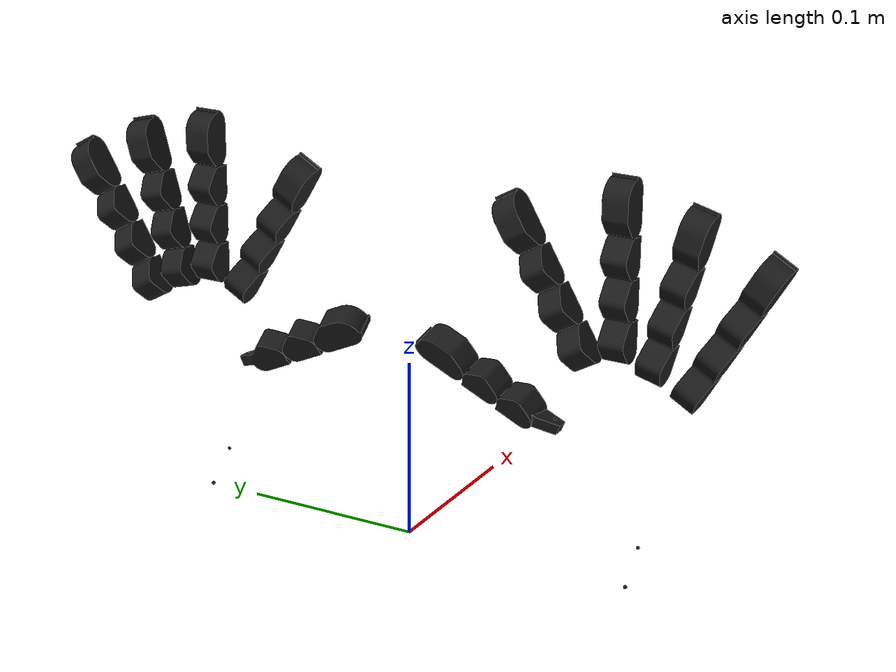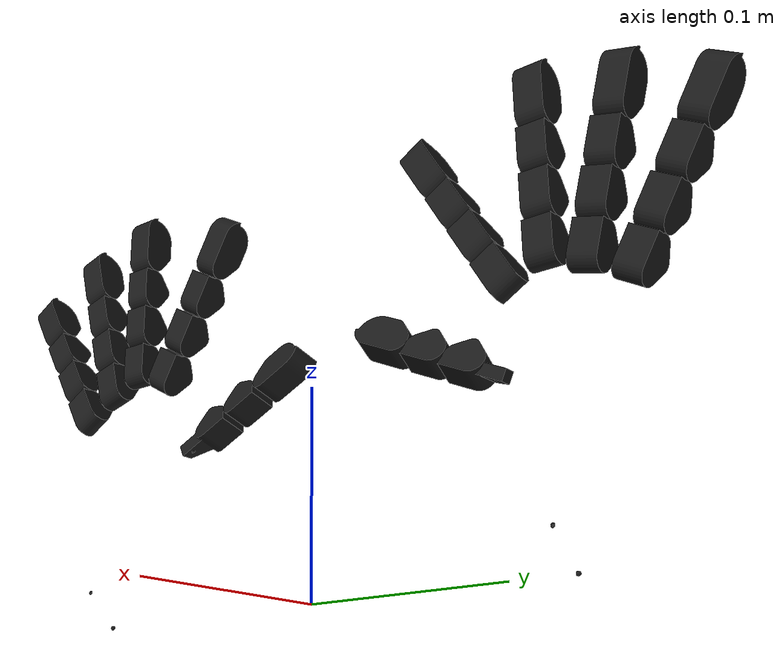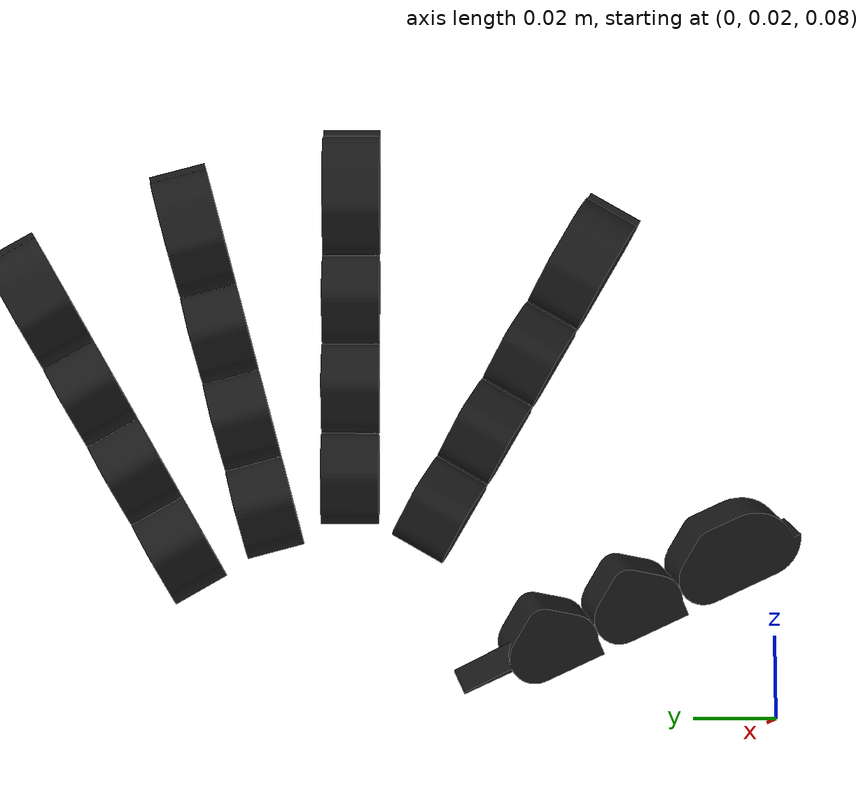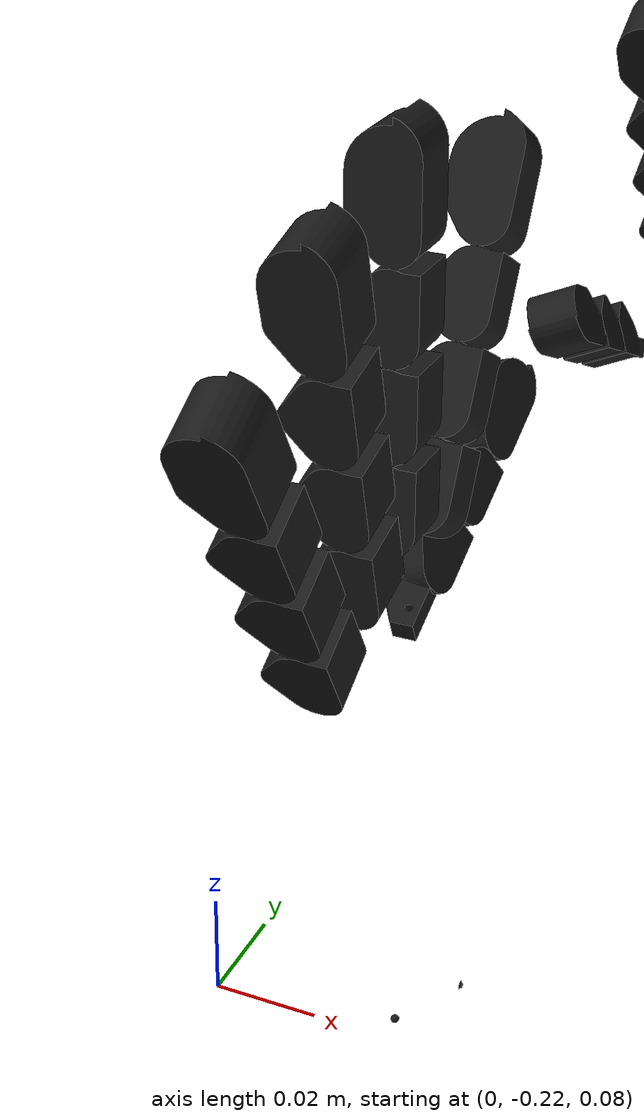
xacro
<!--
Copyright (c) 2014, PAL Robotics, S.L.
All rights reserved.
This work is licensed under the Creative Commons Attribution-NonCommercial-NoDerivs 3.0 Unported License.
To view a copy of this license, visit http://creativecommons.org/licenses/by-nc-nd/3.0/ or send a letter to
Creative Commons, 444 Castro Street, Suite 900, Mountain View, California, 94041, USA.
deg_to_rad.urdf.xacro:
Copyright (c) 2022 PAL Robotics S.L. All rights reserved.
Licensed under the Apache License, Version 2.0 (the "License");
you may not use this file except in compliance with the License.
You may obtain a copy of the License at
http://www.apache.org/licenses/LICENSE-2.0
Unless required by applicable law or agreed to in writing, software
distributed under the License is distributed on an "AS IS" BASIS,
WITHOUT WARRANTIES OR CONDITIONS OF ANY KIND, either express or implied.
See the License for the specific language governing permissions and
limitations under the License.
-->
<?xml version="1.0"?>
<robot xmlns:xacro="http://ros.org/wiki/xacro"
       name="hey5">
  <!--External resources-->
  <xacro:include filename="$(find hey5_description)/urdf/deg_to_rad.urdf.xacro" />
  <xacro:include filename="$(find hey5_description)/urdf/hey5_hand.urdf.xacro" />

  <!--Spawn hands-->
  <link name="tool_flange"/>

  <xacro:hey5_hand parent="tool_flange" name="hand_right" reflect="1" >
    <origin xyz="0 0.13 0" rpy="0 ${-90 * deg_to_rad} ${90 * deg_to_rad}" />
  </xacro:hey5_hand>

  <xacro:hey5_hand parent="tool_flange" name="hand_left" reflect="-1" >
    <origin xyz="0 -0.13 0" rpy="0 ${-90 * deg_to_rad} ${90 * deg_to_rad}" />
  </xacro:hey5_hand>

</robot>

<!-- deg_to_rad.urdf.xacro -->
<robot xmlns:xacro="http://ros.org/wiki/xacro">
  <xacro:property name="deg_to_rad" value="0.01745329251994329577" />
</robot>

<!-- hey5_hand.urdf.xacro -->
<robot xmlns:xacro="http://ros.org/wiki/xacro">
  <!--External resources-->
  <xacro:include filename="$(find hey5_description)/urdf/actuators.urdf.xacro" />
  <xacro:include filename="$(find hey5_description)/urdf/deg_to_rad.urdf.xacro" />
  <xacro:include filename="$(find hey5_description)/urdf/fingers.urdf.xacro" />
  <xacro:include filename="$(find hey5_description)/urdf/palm.urdf.xacro" />
  <xacro:include filename="$(find hey5_description)/urdf/transmissions.urdf.xacro" />
  <xacro:include filename="$(find hey5_description)/gazebo/gazebo.urdf.xacro" />

  <!--Constants-->
  <xacro:property name="thumb_act_flex_start"  value="2.0" />
  <xacro:property name="index_act_flex_start"  value="0.7" />
  <xacro:property name="middle_act_flex_start" value="0.0" />
  <xacro:property name="ring_act_flex_start"   value="0.75" />
  <xacro:property name="little_act_flex_start" value="0.75" />

  <xacro:macro name="hey5_hand" params="name parent reflect *origin">
  <!-- Tool Link -->
    <link name="${name}_tool_link">
      <inertial>
        <origin xyz="0 0 0" rpy="0 0 0" />
        <mass value="0.0001" />
        <inertia ixx="0.00001" ixy="0.0" ixz="0.0"
                 iyy="0.00001" iyz="0.0"
                 izz="0.00001" />
      </inertial>
    </link>

    <joint name="${name}_tool_joint" type="fixed">
      <xacro:insert_block name="origin"/>
      <parent link="${parent}" />
      <child link="${name}_tool_link" />
       <axis xyz="0 0 0" />
    </joint>
    <!--Palm-->
    <xacro:palm parent="${parent}" name="${name}_palm" reflect="${reflect}" >
      <xacro:insert_block name="origin" />
    </xacro:palm>

    <!--Actuators-->
    <xacro:thumb_actuator parent="${name}_palm_link" name="${name}_thumb">
      <origin xyz="0 0 0" rpy="0 0 0" /> <!-- TODO: Change! -->
    </xacro:thumb_actuator>

    <xacro:index_actuator parent="${name}_palm_link" name="${name}_index">
      <origin xyz="0 0 0" rpy="0 0 0" /> <!-- TODO: Change! -->
    </xacro:index_actuator>

    <xacro:mrl_actuator parent="${name}_palm_link" name="${name}_mrl">
      <origin xyz="0 0 0" rpy="0 0 0" /> <!-- TODO: Change! -->
    </xacro:mrl_actuator>

    <!--Fingers-->
    <!-- TODO: Add grasp hack? -->
    <xacro:thumb parent="${name}_palm_link" name="${name}_thumb" reflect="${reflect}">
      <origin xyz="0.0901 0.0134 ${reflect * 0.038}" rpy="0 ${-reflect * 65 * deg_to_rad} 0" />
    </xacro:thumb>

    <xacro:finger parent="${name}_palm_link" name="${name}_index" reflect="${reflect}">
      <origin xyz="0.1265 0.0042 ${reflect * 0.0265}" rpy="${-reflect * 90 * deg_to_rad} ${-reflect * 30 * deg_to_rad} 0" />
    </xacro:finger>

    <xacro:finger parent="${name}_palm_link" name="${name}_middle" reflect="${reflect}">
      <origin xyz="0.1335 0.0042 ${reflect * 0.007}" rpy="${-reflect * 90 * deg_to_rad} 0 0" />
    </xacro:finger>

    <xacro:finger parent="${name}_palm_link" name="${name}_ring" reflect="${reflect}">
      <origin xyz="0.1265 0.0042 ${reflect * -0.0125}" rpy="${-reflect * 90 * deg_to_rad} ${reflect * 15 * deg_to_rad} 0" />
    </xacro:finger>

    <xacro:finger parent="${name}_palm_link" name="${name}_little" reflect="${reflect}">
      <origin xyz="0.1165 0.0042 ${reflect * -0.032}" rpy="${-reflect * 90 * deg_to_rad} ${reflect * 30 * deg_to_rad} 0" />
    </xacro:finger>

    <!--Transmissions-->
    <xacro:thumb_transmissions
      finger_name="${name}_thumb"
      act_name="${name}_thumb_motor"
      act_flex_start="${thumb_act_flex_start}"
      jnt_abd_start="${0.0 * deg_to_rad}"
      jnt_abd_stop="${90 * deg_to_rad}"
      abd_reduction="${75 * deg_to_rad / thumb_act_flex_start}"
      flex_reduction="${40 * deg_to_rad / (360 * deg_to_rad - thumb_act_flex_start)}"
    />

    <xacro:finger_transmissions
      finger_name="${name}_index"
      act_name="${name}_index_motor"
      act_flex_start="${index_act_flex_start}"
      jnt_abd_start="${0.0 * deg_to_rad}"
      jnt_abd_stop="${30.0 * deg_to_rad}"
      abd_reduction="${20.0 * deg_to_rad / index_act_flex_start}"
      flex_reduction="${36 * deg_to_rad / (390 * deg_to_rad - index_act_flex_start)}"
    />

    <xacro:finger_transmissions
      finger_name="${name}_middle"
      act_name="${name}_mrl_motor"
      act_flex_start="${middle_act_flex_start}"
      jnt_abd_start="${0.0 * deg_to_rad}"
      jnt_abd_stop="${0.0 * deg_to_rad}"
      abd_reduction="1.0"
      flex_reduction="${36 * deg_to_rad / (530 * deg_to_rad - middle_act_flex_start)}"
    />

    <xacro:finger_transmissions
      finger_name="${name}_ring"
      act_name="${name}_mrl_motor"
      act_flex_start="${ring_act_flex_start}"
      jnt_abd_start="${-15.0 * deg_to_rad}"
      jnt_abd_stop="${0.0 * deg_to_rad}"
      abd_reduction="${-10.0 * deg_to_rad / ring_act_flex_start}"
      flex_reduction="${36 * deg_to_rad / (530 * deg_to_rad - ring_act_flex_start)}"
    />

    <xacro:finger_transmissions
      finger_name="${name}_little"
      act_name="${name}_mrl_motor"
      act_flex_start="${little_act_flex_start}"
      jnt_abd_start="${-30.0 * deg_to_rad}"
      jnt_abd_stop="${0.0 * deg_to_rad}"
      abd_reduction="${-20.0 * deg_to_rad / little_act_flex_start}"
      flex_reduction="${36 * deg_to_rad / (530 * deg_to_rad - little_act_flex_start)}"
    />

    <link name="${name}_grasping_frame"/>

    <joint name="${name}_grasping_fixed_joint" type="fixed">
      <parent link="${name}_palm_link"/>
      <child link="${name}_grasping_frame"/>
      <axis xyz="0 0 1" />
      <origin xyz="0.13 0.02 0" rpy="0 0 0"/>
    </joint>

    <!-- hey5 gazebo plugin -->
    <xacro:hey5_gazebo_simulation side="${name}"/>

  </xacro:macro>
</robot>

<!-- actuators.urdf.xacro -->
<robot xmlns:xacro="http://ros.org/wiki/xacro">

  <!-- Thumb actuator -->
  <xacro:macro name="thumb_actuator" params="name parent *origin">
    <xacro:actuator_impl parent="${parent}" name="${name}">
      <xacro:insert_block name="origin" />
      <limit lower="${-150 * deg_to_rad}" upper="${360 * deg_to_rad}" effort="2.0" velocity="3.35" />
      <safety_controller k_position="20"
                         k_velocity="20"
                         soft_lower_limit="${-150.0 * deg_to_rad}"
                         soft_upper_limit="${ 360.0 * deg_to_rad}" />
    </xacro:actuator_impl>
  </xacro:macro>

  <!-- Index actuator -->
  <xacro:macro name="index_actuator" params="name parent *origin">
    <xacro:actuator_impl parent="${parent}" name="${name}">
      <xacro:insert_block name="origin" />
      <limit lower="${-175 * deg_to_rad}" upper="${390 * deg_to_rad}" effort="2.0" velocity="3.35" />
      <safety_controller k_position="20"
                         k_velocity="20"
                         soft_lower_limit="${-175.0 * deg_to_rad}"
                         soft_upper_limit="${ 390.0 * deg_to_rad}" />
    </xacro:actuator_impl>
  </xacro:macro>

  <!-- Middle, ring, little (mrl) actuator -->
  <xacro:macro name="mrl_actuator" params="name parent *origin">
    <xacro:actuator_impl parent="${parent}" name="${name}">
      <xacro:insert_block name="origin" />
      <limit lower="${-145 * deg_to_rad}" upper="${530 * deg_to_rad}" effort="2.0" velocity="3.56" />
      <safety_controller k_position="20"
                         k_velocity="20"
                         soft_lower_limit="${-145 * deg_to_rad}"
                         soft_upper_limit="${ 530 * deg_to_rad}" />
    </xacro:actuator_impl>
  </xacro:macro>

  <xacro:macro name="actuator_impl" params="name parent *origin *limit *safety_controller">
    <joint name="${name}_joint" type="revolute">
      <parent link="${parent}" />
      <child link="${name}_link" />
      <xacro:insert_block name="origin" />
      <axis xyz="0 0 1" />
      <xacro:insert_block name="limit" />
      <dynamics friction="0.0" damping="0.5"/>
      <xacro:insert_block name="safety_controller" />
    </joint>

    <link name="${name}_link">
      <inertial>
        <origin xyz="0 0 0" rpy="0 0 0" />
        <mass value="0.05" />
        <inertia ixx="0.001" ixy="0" ixz="0" iyy="0.001" iyz="0" izz="0.001" /> <!--To stabilize simulation-->
      </inertial>
      <visual>
        <origin xyz="0 0 0" rpy="0 0 0" />
        <geometry>
          <sphere radius="0.001"/>
        </geometry>
        <material name="Hey5DarkGrey" />
      </visual>
      <collision>
        <origin xyz="0 0 0" rpy="0 0 0" />
        <geometry>
          <sphere radius="0.001"/>
        </geometry>
      </collision>
    </link>
  </xacro:macro>
</robot>

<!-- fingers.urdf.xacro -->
<robot xmlns:xacro="http://ros.org/wiki/xacro">

  <!--External resources-->
  <xacro:include filename="$(find hey5_description)/urdf/deg_to_rad.urdf.xacro" />
  <xacro:include filename="$(find hey5_description)/urdf/materials.urdf.xacro" />

  <!--Constants-->
  <xacro:property name="thumb_abd_min"   value="${  0 * deg_to_rad}" />
  <xacro:property name="thumb_abd_max"   value="${ 90 * deg_to_rad}" />
  <xacro:property name="finger_abd_min"  value="${-30 * deg_to_rad}" />
  <xacro:property name="finger_abd_max"  value="${ 30 * deg_to_rad}" />
  <xacro:property name="finger_flex_min" value="${  0 * deg_to_rad}" />
  <xacro:property name="finger_flex_max" value="${ 45 * deg_to_rad}" />
  <xacro:property name="finger_max_vel"  value="2.0" />
  <xacro:property name="finger_max_eff"  value="2.0" />
  <xacro:property name="finger_friction" value="0.0" />
  <xacro:property name="finger_damping"  value="0.5" />

  <xacro:property name="finger_d1"  value="0.009" />
  <xacro:property name="finger_d2"  value="0.013" />

  <!--
    Set to "" to use separate visualization mesh, or to "_collision" to use
    collision meshes for visualization as well
  -->
  <xacro:property name="vis_suffix"  value="_collision" />

  <xacro:macro name="finger" params="name parent reflect *origin">
    <!--Abductor-->
    <xacro:finger_abd parent="${parent}" name="${name}_abd" reflect="${reflect}">
      <xacro:insert_block name="origin" />
    </xacro:finger_abd>

    <!--First flexor-->
    <xacro:finger_flex_virtual parent="${name}_abd_link" name="${name}_virtual_1" reflect="${reflect}">
      <origin xyz="${finger_d1} 0 0" rpy="${reflect * 90 * deg_to_rad} 0 0" />
    </xacro:finger_flex_virtual>

    <xacro:finger_flex parent="${name}_virtual_1_link" name="${name}_flex_1" reflect="${reflect}">
      <origin xyz="${finger_d2} 0 0" rpy="0 0 0" />
    </xacro:finger_flex>

    <!--Second flexor-->
    <xacro:finger_flex_virtual parent="${name}_flex_1_link" name="${name}_virtual_2" reflect="${reflect}">
      <origin xyz="${finger_d1} 0 0" rpy="0 0 0" />
    </xacro:finger_flex_virtual>

    <xacro:finger_flex parent="${name}_virtual_2_link" name="${name}_flex_2" reflect="${reflect}">
      <origin xyz="${finger_d2} 0 0" rpy="0 0 0" />
    </xacro:finger_flex>

    <!--Third flexor-->
    <xacro:finger_flex_virtual parent="${name}_flex_2_link" name="${name}_virtual_3" reflect="${reflect}">
      <origin xyz="${finger_d1} 0 0" rpy="0 0 0" />
    </xacro:finger_flex_virtual>

    <xacro:finger_flex_tip parent="${name}_virtual_3_link" name="${name}_flex_3" reflect="${reflect}">
      <origin xyz="${finger_d2} 0 0" rpy="0 0 0" />
    </xacro:finger_flex_tip>
  </xacro:macro>

  <xacro:macro name="thumb" params="name parent reflect *origin">
    <!--Abductor-->
    <xacro:thumb_abd parent="${parent}" name="${name}_abd" reflect="${reflect}">
      <xacro:insert_block name="origin" />
    </xacro:thumb_abd>

    <!--First flexor-->
    <xacro:finger_flex_virtual parent="${name}_abd_link" name="${name}_virtual_1" reflect="${reflect}">
      <origin xyz="${0.0355 - finger_d2} 0.003 0" rpy="${-reflect * 65.56 * deg_to_rad} 0 0" />
    </xacro:finger_flex_virtual>

    <xacro:finger_flex parent="${name}_virtual_1_link" name="${name}_flex_1" reflect="${reflect}">
      <origin xyz="${finger_d2} 0 0" rpy="0 0 0" />
    </xacro:finger_flex>

    <!--Second flexor-->
    <xacro:finger_flex_virtual parent="${name}_flex_1_link" name="${name}_virtual_2" reflect="${reflect}">
      <origin xyz="${finger_d1} 0 0" rpy="0 0 0" />
    </xacro:finger_flex_virtual>

    <xacro:finger_flex_tip parent="${name}_virtual_2_link" name="${name}_flex_2" reflect="${reflect}">
      <origin xyz="${finger_d2} 0 0" rpy="0 0 0" />
    </xacro:finger_flex_tip>
  </xacro:macro>

  <xacro:macro name="finger_abd" params="name parent reflect *origin">
    <joint name="${name}_joint" type="revolute">
      <parent link="${parent}" />
      <child link="${name}_link" />
      <xacro:insert_block name="origin" />
      <axis xyz="0 0 1" />
      <limit lower="${finger_abd_min}" upper="${finger_abd_max}" effort="${finger_max_eff}" velocity="${finger_max_vel}" />
      <dynamics friction="${finger_friction}" damping="${finger_damping}"/>
    </joint>

    <link name="${name}_link">
      <inertial>
        <origin xyz="-0.0018 0.0 0.0028" rpy="0 0 0" />
        <mass value="0.018" />
        <inertia ixx="0.001" ixy="0" ixz="0" iyy="0.001" iyz="0" izz="0.001" /> <!-- To stabilize simulation -->
      </inertial>
      <visual>
        <origin xyz="0 0 0" rpy="0 0 0" />
        <geometry>
          <mesh filename="package://hey5_description/meshes/finger_abd${vis_suffix}.stl" scale="1 1 ${reflect}" />
        </geometry>
        <material name="Hey5DarkGrey" />
      </visual>
      <collision>
        <origin xyz="0 0 0" rpy="0 0 0" />
        <geometry>
          <mesh filename="package://hey5_description/meshes/finger_abd_collision.stl" scale="1 1 ${reflect}" />
        </geometry>
      </collision>
    </link>
    <gazebo reference="${name}_link">
      <material>Gazebo/Black</material>
    </gazebo>
  </xacro:macro>

  <xacro:macro name="thumb_abd" params="name parent reflect *origin">
    <joint name="${name}_joint" type="revolute">
      <parent link="${parent}" />
      <child link="${name}_link" />
      <xacro:insert_block name="origin" />
      <axis xyz="0 0 1" />
      <limit lower="${thumb_abd_min}" upper="${thumb_abd_max}" effort="${finger_max_eff}" velocity="${finger_max_vel}" />
      <dynamics friction="${finger_friction}" damping="${finger_damping}"/>
    </joint>

    <link name="${name}_link">
      <inertial>
        <origin xyz="-0.0132 0.0037 -0.0017" rpy="0 0 0" />
        <mass value="0.014" />
        <inertia ixx="0.001" ixy="0" ixz="0" iyy="0.001" iyz="0" izz="0.001" /> <!-- To stabilize simulation -->
      </inertial>
      <visual>
        <origin xyz="0 0 0" rpy="0 0 0" />
        <geometry>
          <mesh filename="package://hey5_description/meshes/thumb_abd${vis_suffix}.stl" scale="1 1 ${reflect}" />
        </geometry>
        <material name="Hey5DarkGrey" />
      </visual>
      <collision>
        <origin xyz="0 0 0" rpy="0 0 0" />
        <geometry>
          <mesh filename="package://hey5_description/meshes/thumb_abd_collision.stl" scale="1 ${reflect} 1" />
        </geometry>
      </collision>
    </link>
    <gazebo reference="${name}_link">
      <material>Gazebo/Black</material>
    </gazebo>
  </xacro:macro>

  <xacro:macro name="finger_flex_virtual" params="name parent reflect *origin" >
    <joint name="${name}_joint" type="revolute">
      <parent link="${parent}" />
      <child link="${name}_link" />
      <xacro:insert_block name="origin" />
      <axis xyz="0 0 1" />
      <limit lower="${finger_flex_min}" upper="${finger_flex_max}" effort="${finger_max_eff}" velocity="${finger_max_vel}" />
      <dynamics friction="${finger_friction}" damping="${finger_damping}"/>
    </joint>

    <link name="${name}_link">
      <inertial>
        <origin xyz="${finger_d2 / 2.0} 0 0" rpy="0 0 0" />
        <mass value="0.01" />
        <inertia ixx="0.001" ixy="0" ixz="0" iyy="0.001" iyz="0" izz="0.001" /> <!-- To stabilize simulation -->
      </inertial>
      <visual>
        <origin xyz="${finger_d2 / 2} 0 0" rpy="0 0 0" />
        <geometry>
          <box size="${finger_d2} 0.002 0.012" />
        </geometry>
        <material name="Hey5DarkGrey" />
      </visual>
      <collision>
        <origin xyz="0 0 0" rpy="0 0 0" />
        <geometry>
          <box size="${finger_d2} 0.002 0.012" />
        </geometry>
      </collision>
    </link>
    <gazebo reference="${name}_link">
      <material>Gazebo/Black</material>
    </gazebo>
  </xacro:macro>

  <xacro:macro name="finger_flex" params="name parent reflect *origin">
    <joint name="${name}_joint" type="revolute">
      <parent link="${parent}" />
      <child link="${name}_link" />
      <xacro:insert_block name="origin" />
      <axis xyz="0 0 1" />
      <limit lower="${finger_flex_min}" upper="${finger_flex_max}" effort="${finger_max_eff}" velocity="${finger_max_vel}" />
      <dynamics friction="${finger_friction}" damping="${finger_damping}"/>
    </joint>

    <link name="${name}_link">
      <inertial>
        <origin xyz="0.0047 0.0031 0.0" rpy="0 0 0" />
        <mass value="0.009" />
        <inertia ixx="0.001" ixy="0" ixz="0" iyy="0.001" iyz="0" izz="0.001" /> <!-- To stabilize simulation -->
      </inertial>
      <visual>
        <origin xyz="0 0 0" rpy="0 0 0" />
        <geometry>
          <mesh filename="package://hey5_description/meshes/finger_flex${vis_suffix}.stl" />
        </geometry>
        <material name="Hey5DarkGrey" />
      </visual>
      <collision>
        <origin xyz="0 0 0" rpy="0 0 0" />
        <geometry>
          <mesh filename="package://hey5_description/meshes/finger_flex_collision.stl" />
        </geometry>
      </collision>
    </link>
    <gazebo reference="${name}_link">
      <material>Gazebo/Black</material>
    </gazebo>
  </xacro:macro>

  <xacro:macro name="finger_flex_tip" params="name parent reflect *origin">
    <joint name="${name}_joint" type="revolute">
      <parent link="${parent}" />
      <child link="${name}_link" />
      <xacro:insert_block name="origin" />
      <axis xyz="0 0 1" />
      <limit lower="${finger_flex_min}" upper="${finger_flex_max}" effort="${finger_max_eff}" velocity="${finger_max_vel}" />
      <dynamics friction="${finger_friction}" damping="${finger_damping}"/>
    </joint>

    <link name="${name}_link">
      <inertial>
        <origin xyz="0.0096 0.003 0.0" rpy="0 0 0" />
        <mass value="0.015" />
        <inertia ixx="0.001" ixy="0" ixz="0" iyy="0.001" iyz="0" izz="0.001" /> <!-- To stabilize simulation -->
      </inertial>
      <visual>
        <origin xyz="0 0 0" rpy="0 0 0" />
        <geometry>
          <mesh filename="package://hey5_description/meshes/finger_flex_tip${vis_suffix}.stl" />
        </geometry>
        <material name="Hey5DarkGrey" />
      </visual>
      <collision>
        <origin xyz="0 0 0" rpy="0 0 0" />
        <geometry>
          <mesh filename="package://hey5_description/meshes/finger_flex_tip_collision.stl" />
        </geometry>
      </collision>
    </link>
    <gazebo reference="${name}_link">
      <material>Gazebo/Black</material>
    </gazebo>
  </xacro:macro>

</robot>

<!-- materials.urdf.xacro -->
<robot>
 <material name="Hey5DarkGrey">
   <color rgba="0.1 0.1 0.1 1.0"/>
 </material>
</robot>

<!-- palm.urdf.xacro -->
<robot xmlns:xacro="http://ros.org/wiki/xacro">

  <xacro:macro name="palm" params="name parent reflect *origin">
    <joint name="${name}_joint" type="fixed">
      <parent link="${parent}" />
      <child link="${name}_link" />
      <xacro:insert_block name="origin" />
    </joint>

    <link name="${name}_link">
      <inertial>
        <origin xyz="0.0641 -0.0022 0.0021" rpy="0 0 0" />
        <mass value="0.4" />
        <inertia ixx="0.000305100" ixy="0.000005037" ixz="0.000015302"
                 iyy="0.000811920" iyz="0.000007622" izz="0.000655851" />
      </inertial>
      <visual>
        <origin xyz="0 0 0" rpy="0 0 0" />
        <geometry>
          <mesh filename="package://hey5_description/meshes/palm.stl" scale="1 1 ${reflect}" />
        </geometry>
        <material name="Hey5DarkGrey" />
      </visual>
      <collision>
        <origin xyz="0 0 0" rpy="0 0 0" />
        <geometry>
          <mesh filename="package://hey5_description/meshes/palm_collision.stl" scale="1 1 ${reflect}" />
        </geometry>
      </collision>
    </link>
    <gazebo reference="${name}_link">
      <material>Gazebo/Black</material>
    </gazebo>
  </xacro:macro>

</robot>
